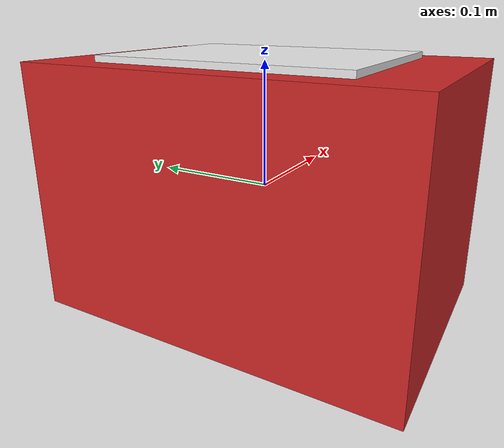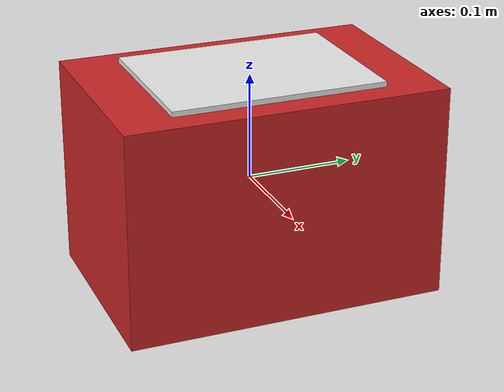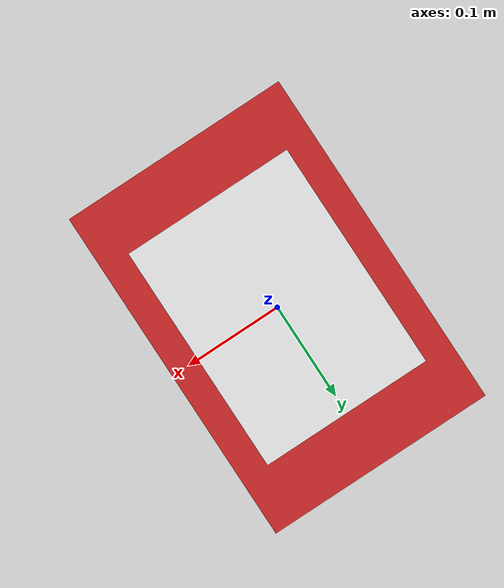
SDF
<?xml version="1.0" ?>
<sdf version="1.5">
  <model name="mbzirc_box_red">
    <link name="link">
      <inertial>
        <pose>0 0 0.3 0 0 0</pose>
        <mass>1.0</mass>
        <inertia>
          <ixx>0.006667</ixx>
          <ixy>0</ixy>
          <ixz>0</ixz>
          <iyy>0.01083</iyy>
          <iyz>0</iyz>
          <izz>0.01083</izz>
        </inertia>
      </inertial>
      <collision name="collision">
        <geometry>
          <box>
            <size>0.2 0.3 0.2</size>
          </box>
        </geometry>
      </collision>
      <visual name="visual">
        <geometry>
          <box>
            <size>0.2 0.3 0.2</size>
          </box>
        </geometry>
        <material>
          <script>
            <name>Gazebo/Red</name>
            <uri>file://media/materials/scripts/gazebo.material</uri>
          </script>
        </material>
      </visual>
      <collision name="collision_top">
        <pose>0 0 0.1 0 0 0</pose>
        <geometry>
          <box>
            <size>0.15 0.2 0.01</size>
          </box>
        </geometry>
      </collision>
      <visual name="visual_top">
        <pose>0 0 0.1 0 0 0</pose>
        <geometry>
          <box>
            <size>0.15 0.2 0.01</size>
          </box>
        </geometry>
        <material>
          <script>
            <name>Gazebo/White</name>
            <uri>file://media/materials/scripts/gazebo.material</uri>
          </script>
        </material>
      </visual>
    </link>
  </model>
</sdf>
